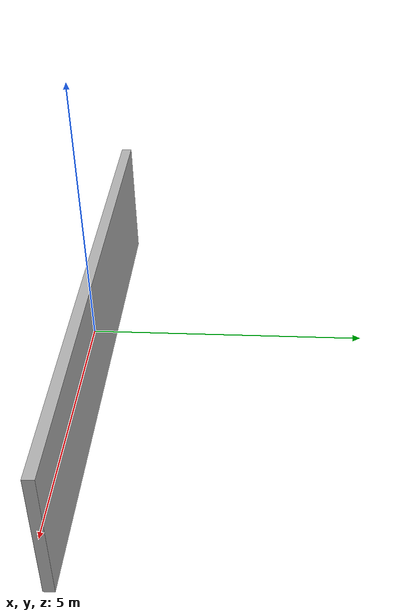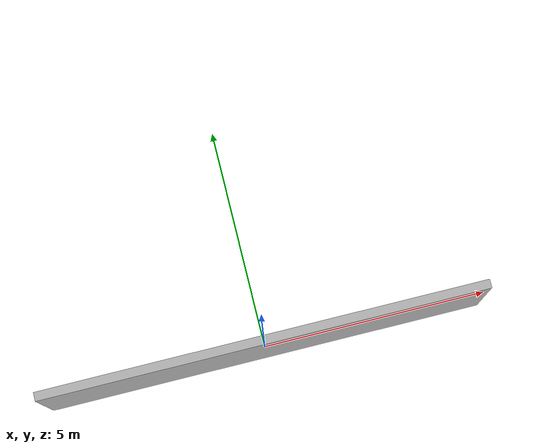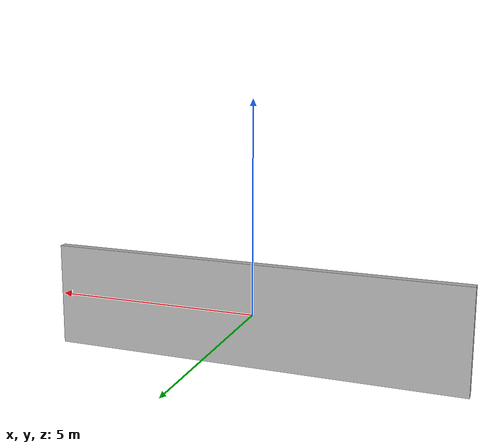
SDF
<?xml version="1.0"?>

<sdf version="1.10">

  <model name="wall">

    <!-- The wall does not move -->
    <static>true</static>

    <link name="wall_link">

      <!-- PHYSICAL COLLISION          -->

      <collision name="collision">

        <geometry>
          <box>
            <size>10 0.2 2.5</size>
          </box>
        </geometry>

      </collision>

      <!-- VISUAL                      -->

      <visual name="visual">

        <geometry>
          <box>
            <size>10 0.2 2.5</size>
          </box>
        </geometry>

        <material>

          <ambient>0.7 0.7 0.7 1</ambient>

          <diffuse>0.7 0.7 0.7 1</diffuse>

          <specular>0.2 0.2 0.2 1</specular>

        </material>

      </visual>

    </link>

  </model>

</sdf>
